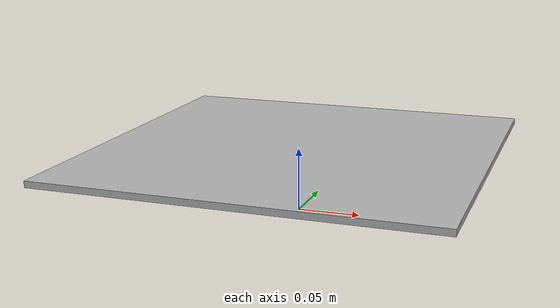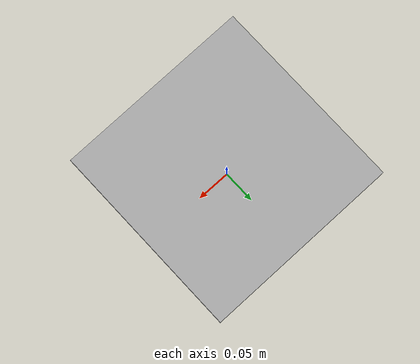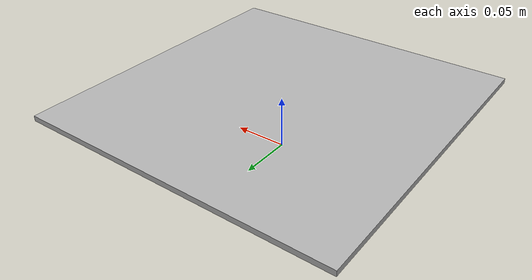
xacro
<?xml version="1.0"?>
<robot name="base_gazebo_module" xmlns:xacro="http://www.ros.org/wiki/xacro">

  <xacro:property name="PI" value="3.1415926"/>

  <xacro:property name="base_len" value="0.30"/>
  <xacro:property name="base_width" value="0.30"/>
  <xacro:property name="base_height" value="0.005"/>
  <xacro:property name="base_mass" value="1.0"/>
  <xacro:property name="base_z_offset" value="0.05"/>

  <material name="plate_gray"><color rgba="0.7 0.7 0.7 1.0"/></material>
  <material name="motor_black"><color rgba="0.2 0.2 0.2 1.0"/></material>
  <material name="shaft_silver"><color rgba="0.8 0.8 0.8 1.0"/></material>
  <material name="wheel_blue"><color rgba="0.0 0.2 0.8 1.0"/></material>
  <material name="caster_orange"><color rgba="0.9 0.4 0.0 1.0"/></material>
  <material name="lidar_dark"><color rgba="0.05 0.05 0.05 1.0"/></material>
  <material name="imu_red"><color rgba="0.8 0.0 0.0 1.0"/></material>
  <material name="camera_green"><color rgba="0.0 0.6 0.0 1.0"/></material>

  <xacro:macro name="box_inertial" params="mass x y z *origin">
    <inertial>
      <xacro:insert_block name="origin"/>
      <mass value="${mass}"/>
      <inertia
        ixx="${mass * (y*y + z*z) / 12.0}"
        ixy="0.0"
        ixz="0.0"
        iyy="${mass * (x*x + z*z) / 12.0}"
        iyz="0.0"
        izz="${mass * (x*x + y*y) / 12.0}"/>
    </inertial>
  </xacro:macro>

  <xacro:macro name="cylinder_inertial" params="mass radius length *origin">
    <inertial>
      <xacro:insert_block name="origin"/>
      <mass value="${mass}"/>
      <inertia
        ixx="${mass * (3.0 * radius * radius + length * length) / 12.0}"
        ixy="0.0"
        ixz="0.0"
        iyy="${mass * (3.0 * radius * radius + length * length) / 12.0}"
        iyz="0.0"
        izz="${mass * radius * radius / 2.0}"/>
    </inertial>
  </xacro:macro>

  <xacro:macro name="sphere_inertial" params="mass radius *origin">
    <inertial>
      <xacro:insert_block name="origin"/>
      <mass value="${mass}"/>
      <inertia
        ixx="${2.0 * mass * radius * radius / 5.0}"
        ixy="0.0"
        ixz="0.0"
        iyy="${2.0 * mass * radius * radius / 5.0}"
        iyz="0.0"
        izz="${2.0 * mass * radius * radius / 5.0}"/>
    </inertial>
  </xacro:macro>

  <link name="base_footprint"/>

  <joint name="footprint_to_base" type="fixed">
    <parent link="base_footprint"/>
    <child link="base_link"/>
    <origin xyz="0 0 ${base_z_offset}" rpy="0 0 0"/>
  </joint>

  <link name="base_link">
    <visual>
      <geometry>
        <box size="${base_len} ${base_width} ${base_height}"/>
      </geometry>
      <material name="plate_gray"/>
    </visual>

    <collision>
      <geometry>
        <box size="${base_len} ${base_width} ${base_height}"/>
      </geometry>
    </collision>

    <xacro:box_inertial mass="${base_mass}" x="${base_len}" y="${base_width}" z="${base_height}">
      <origin xyz="0 0 0" rpy="0 0 0"/>
    </xacro:box_inertial>
  </link>

  <gazebo reference="base_link">
    <material>Gazebo/Grey</material>
  </gazebo>

</robot>
